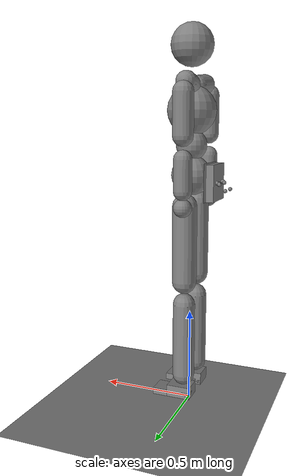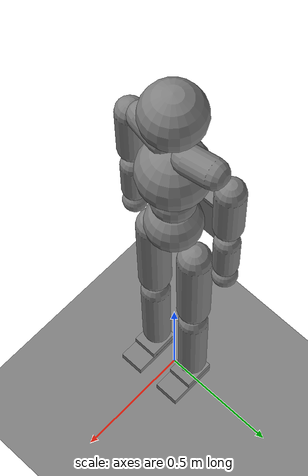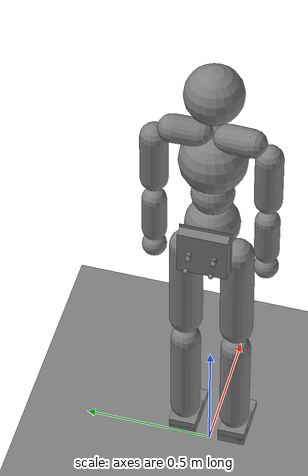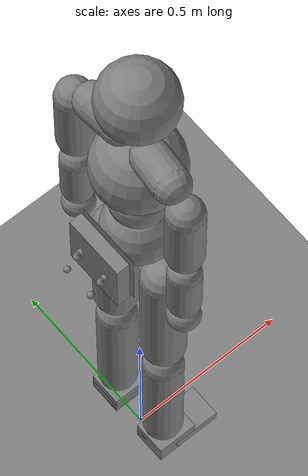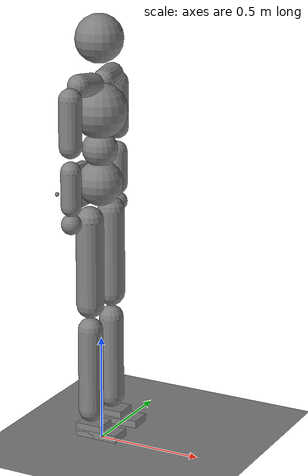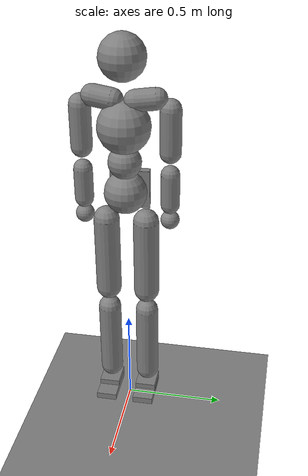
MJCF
<mujoco model="humanoid">

  <statistic extent="2" center="0.000000 0.000000 1.166667" />

  <option timestep="0.00555" />

  <default>
    <motor ctrlrange="-1 1" ctrllimited="true" />
    <default class="body">
      <geom type="capsule" condim="1" friction="1.0 0.05 0.05" solimp=".9 .99 .003" solref=".015 1" />
      <joint type="hinge" damping="0.1" stiffness="5" armature=".007" limited="true" solimplimit="0 .99 .01" />
      <site size="0.046667" group="3" />
      <default class="force-torque">
        <site type="box" size="0.011667 0.011667 0.023333" rgba="1 0 0 1" />
      </default>
      <default class="touch">
        <site type="capsule" rgba="0 0 1 .3" />
      </default>
    </default>
  </default>

  <worldbody>
    <geom name="floor" type="plane" conaffinity="1" size="116.666667 116.666667 0.233333" />
    <body name="pelvis" pos="0.000000 0.000000 1.166667" childclass="body">
      <freejoint name="root" />
      <site name="root" class="force-torque" />
      <geom name="pelvis" type="sphere" pos="0.000000 0.000000 0.081667" size="0.105000" density="2226" />
      <geom name="upper_waist" type="sphere" pos="0.000000 0.000000 0.239167" size="0.081667" density="2226" />
      <site name="pelvis" class="touch" type="sphere" pos="0.000000 0.000000 0.081667" size="0.106167" />
      <site name="upper_waist" class="touch" type="sphere" pos="0.000000 0.000000 0.239167" size="0.082833" />

      <body name="torso" pos="0.000000 0.000000 0.275510">
        <light name="top" pos="0.000000 0.000000 2.333333" mode="trackcom" />
        <camera name="back" pos="-3.500000 0.000000 1.166667" xyaxes="0 -1 0 1 0 2" mode="trackcom" />
        <camera name="side" pos="0.000000 -3.500000 1.166667" xyaxes="1 0 0 0 1 2" mode="trackcom" />
        <joint name="abdomen_x" pos="0.000000 0.000000 0.000000" axis="1 0 0" range="-60 60" stiffness="600" damping="60" armature=".025" />
        <joint name="abdomen_y" pos="0.000000 0.000000 0.000000" axis="0 1 0" range="-60 90" stiffness="600" damping="60" armature=".025" />
        <joint name="abdomen_z" pos="0.000000 0.000000 0.000000" axis="0 0 1" range="-50 50" stiffness="600" damping="60" armature=".025" />
        <geom name="torso" type="sphere" pos="0.000000 0.000000 0.140000" size="0.128333" density="1794" />
        <site name="torso" class="touch" type="sphere" pos="0.000000 0.000000 0.140000" size="0.129500" />

        <geom name="right_clavicle" fromto="-0.007015 -0.053407 0.266928 -0.019641 -0.149540 0.277221" size="0.052500" density="1100" />
        <geom name="left_clavicle" fromto="-0.007015 0.053407 0.266928 -0.019641 0.149540 0.277221" size="0.052500" density="1100" />

        <body name="head" pos="0.000000 0.000000 0.261210">
          <joint name="neck_x" axis="1 0 0" range="-50 50" stiffness="50" damping="5" armature=".017" />
          <joint name="neck_y" axis="0 1 0" range="-40 60" stiffness="50" damping="5" armature=".017" />
          <joint name="neck_z" axis="0 0 1" range="-45 45" stiffness="50" damping="5" armature=".017" />
          <geom name="head" type="sphere" pos="0.000000 0.000000 0.204167" size="0.110833" density="1081" />
          <site name="head" class="touch" pos="0.000000 0.000000 0.204167" type="sphere" size="0.120167" />
          <camera name="egocentric" pos="0.120167 0.000000 0.204167" xyaxes="0 -1 0 .1 0 1" fovy="80" />
        </body>

        <body name="right_upper_arm" pos="-0.028058 -0.213628 0.284083">
          <joint name="right_shoulder_x" axis="1 0 0" range="-180 45" stiffness="200" damping="20" armature=".02" />
          <joint name="right_shoulder_y" axis="0 1 0" range="-180 60" stiffness="200" damping="20" armature=".02" />
          <joint name="right_shoulder_z" axis="0 0 1" range="-90 90" stiffness="200" damping="20" armature=".02" />
          <geom name="right_upper_arm" fromto="0.000000 0.000000 -0.058333 0.000000 0.000000 -0.268333" size="0.052500" density="982" />
          <site name="right_upper_arm" class="touch" pos="0.000000 0.000000 -0.163333" size="0.053667 0.116667" zaxis="0 0 1" />

          <body name="right_lower_arm" pos="0.000000 0.000000 -0.320586">
            <joint name="right_elbow" axis="0 1 0" range="-160 0" stiffness="150" damping="15" armature=".015" />
            <geom name="right_lower_arm" fromto="0.000000 0.000000 -0.061250 0.000000 0.000000 -0.218750" size="0.046667" density="1056" />
            <site name="right_lower_arm" class="touch" pos="0.000000 0.000000 -0.140000" size="0.047833 0.079917" zaxis="0 1 0" />

            <body name="right_hand" pos="0.000000 0.000000 -0.302105">
              <geom name="right_hand" type="sphere" size="0.046667" density="1865" />
              <site name="right_hand" class="touch" type="sphere" size="0.047833" />
            </body>
          </body>
        </body>

        <body name="left_upper_arm" pos="-0.028058 0.213628 0.284083">
          <joint name="left_shoulder_x" axis="1 0 0" range="-45 180" stiffness="200" damping="20" armature=".02" />
          <joint name="left_shoulder_y" axis="0 1 0" range="-180 60" stiffness="200" damping="20" armature=".02" />
          <joint name="left_shoulder_z" axis="0 0 1" range="-90 90" stiffness="200" damping="20" armature=".02" />
          <geom name="left_upper_arm" fromto="0.000000 0.000000 -0.058333 0.000000 0.000000 -0.268333" size="0.052500" density="982" />
          <site name="left_upper_arm" class="touch" pos="0.000000 0.000000 -0.163333" size="0.053667 0.116667" zaxis="0 0 1" />

          <body name="left_lower_arm" pos="0.000000 0.000000 -0.320586">
            <joint name="left_elbow" axis="0 1 0" range="-160 0" stiffness="150" damping="15" armature=".015" />
            <geom name="left_lower_arm" fromto="0.000000 0.000000 -0.061250 0.000000 0.000000 -0.218750" size="0.046667" density="1056" />
            <site name="left_lower_arm" class="touch" pos="0.000000 0.000000 -0.116667" size="0.047833 0.079917" zaxis="0 0 1" />

            <body name="left_hand" pos="0.000000 0.000000 -0.302105">
              <geom name="left_hand" type="sphere" size="0.046667" density="1865" />
              <site name="left_hand" class="touch" type="sphere" size="0.047833" />
            </body>
          </body>
        </body>
      </body>

      <body name="right_thigh" pos="0.000000 -0.099035 0.000000">
        <site name="right_hip" class="force-torque" />
        <joint name="right_hip_x" axis="1 0 0" range="-60 15" stiffness="300" damping="30" armature=".02" />
        <joint name="right_hip_y" axis="0 1 0" range="-140 60" stiffness="300" damping="30" armature=".02" />
        <joint name="right_hip_z" axis="0 0 1" range="-60 35" stiffness="300" damping="30" armature=".02" />
        <geom name="right_thigh" fromto="0.000000 0.000000 -0.070000 0.000000 0.000000 -0.470000" size="0.064167" density="1269" />
        <site name="right_thigh" class="touch" pos="0.000000 0.000000 -0.245000" size="0.065333 0.351167" zaxis="0 0 -1" />

        <body name="right_shin" pos="0.000000 0.000000 -0.541804">
          <site name="right_knee" class="force-torque" pos="0.000000 0.000000 0.000000" />
          <joint name="right_knee" pos="0.000000 0.000000 0.000000" axis="0 1 0" range="0 160" stiffness="300" damping="30" armature=".02" />
          <geom name="right_shin" fromto="0.000000 0.000000 -0.052500 0.000000 0.000000 -0.444167" size="0.058333" density="1014" />
          <site name="right_shin" class="touch" pos="0.000000 0.000000 -0.233333" size="0.059500 0.182000" zaxis="0 0 -1" />

          <body name="right_foot" pos="0.000000 0.000000 -0.508182">
            <site name="right_ankle" class="force-torque" />
            <joint name="right_ankle_x" pos="0.000000 0.000000 0.000000" axis="1 0 0" range="-30 30" stiffness="200" damping="20" armature=".01" />
            <joint name="right_ankle_y" pos="0.000000 0.000000 0.000000" axis="0 1 0" range="-55 55" stiffness="200" damping="20" armature=".01" />
            <joint name="right_ankle_z" pos="0.000000 0.000000 0.000000" axis="0 0 1" range="-40 40" stiffness="200" damping="20" armature=".01" />
            <geom name="right_foot" type="box" pos="0.012500 0.000000 -0.026250" size="0.063250 0.052500 0.032083" density="1141" />
            <geom name="right_toe" type="box" pos="0.052500 0.000000 -0.041250" size="0.103250 0.052500 0.0171" density="1141" />
            <site name="right_foot" class="touch" type="box" pos="0.052500 0.000000 -0.026250" size="0.104417 0.064167 0.033250" />
          </body>
        </body>
      </body>

      <body name="left_thigh" pos="0.000000 0.099035 0.000000">
        <site name="left_hip" class="force-torque" />
        <joint name="left_hip_x" axis="1 0 0" range="-15 60" stiffness="300" damping="30" armature=".02" />
        <joint name="left_hip_y" axis="0 1 0" range="-140 60" stiffness="300" damping="30" armature=".02" />
        <joint name="left_hip_z" axis="0 0 1" range="-35 60" stiffness="300" damping="30" armature=".02" />
        <geom name="left_thigh" fromto="0.000000 0.000000 -0.070000 0.000000 0.000000 -0.470000" size="0.064167" density="1269" />
        <site name="left_thigh" class="touch" pos="0.000000 0.000000 -0.245000" size="0.065333 0.351167" zaxis="0 0 -1" />

        <body name="left_shin" pos="0.000000 0.000000 -0.541804">
          <site name="left_knee" class="force-torque" pos="0.000000 0.000000 0.023333" />
          <joint name="left_knee" pos="0.000000 0.000000 0.000000" axis="0 1 0" range="0 160" stiffness="300" damping="30" armature=".02" />
          <geom name="left_shin" fromto="0.000000 0.000000 -0.052500 0.000000 0.000000 -0.444167" size="0.058333" density="1014" />
          <site name="left_shin" class="touch" pos="0.000000 0.000000 -0.233333" size="0.059500 0.182000" zaxis="0 0 -1" />

          <body name="left_foot" pos="0.000000 0.000000 -0.508182">
            <site name="left_ankle" class="force-torque" />
            <joint name="left_ankle_x" pos="0.000000 0.000000 0.000000" axis="1 0 0" range="-30 30" stiffness="200" damping="20" armature=".01" />
            <joint name="left_ankle_y" pos="0.000000 0.000000 0.000000" axis="0 1 0" range="-55 55" stiffness="200" damping="20" armature=".01" />
            <joint name="left_ankle_z" pos="0.000000 0.000000 0.000000" axis="0 0 1" range="-40 40" stiffness="200" damping="20" armature=".01" />
            <geom name="left_foot" type="box" pos="0.012500 0.000000 -0.026250" size="0.063250 0.052500 0.032083" density="1141" />
            <geom name="left_toe" type="box" pos="0.052500 0.000000 -0.041250" size="0.103250 0.052500 0.0171" density="1141" />
            <site name="left_foot" class="touch" type="box" pos="0.052500 0.000000 -0.026250" size="0.104417 0.064167 0.033250" />
          </body>
        </body>
      </body>
      <body name="SRL" pos="-0.10 0 0.05" quat="0.0 0.0 0.0 1.0">
				<geom name="board" pos="0 0 0" size="0.0005 0.1 0.1 " type="box" density='10'/>
				<body name="SRL_root" pos="0.03 0 0.00"  >
					<geom density="10" name="SRL_geom_root" pos="0 0 0" size="0.02 0.095 0.095" type="box"/>
					<body name="SRL_right_leg1" pos="0.02 0.0475 0" quat="1.0 0.0 0.0 0.0">
						<geom density="10" fromto="0 0 0 0.01 0 0" name="SRL_geom_right_leg1" size="0.01" type="capsule"/>
						<body name="SRL_right_leg2" pos="0.01 0 0" quat="0.92388 0.0 0.38268 0.0">
							<geom density="10" fromto="0 0 0 0.01 0 0" name="SRL_geom_right_leg2" size="0.01" type="capsule"/>
							<body name="SRL_right_end" pos="0.01 0 0" quat="0.70711 0.0 -0.70711 0.0">
								<geom density="10" friction="5.0 0.05 0.05" name="SRL_geom_right_end" pos="0 0 -0.045" size="0.01" type="sphere"/>
							</body>
						</body>
					</body>
					<body name="SRL_left_leg1" pos="0.02 -0.0475 0" quat="1.0 0.0 0.0 0.0">
						<geom density="10" fromto="0 0 0 0.01 0 0" name="SRL_geom_left_leg1" size="0.01" type="capsule"/>
						<body name="SRL_left_leg2" pos="0.01 0 0" quat="0.92388 0.0 0.38268 0.0">
							<geom density="10" fromto="0 0 0 0.01 0 0" name="SRL_geom_left_leg2" size="0.01" type="capsule"/>
							<body name="SRL_left_end" pos="0.01 0 0" quat="0.70711 0.0 -0.70711 0.0">
								<geom density="10" friction="5.0 0.05 0.05" name="SRL_geom_left_end" pos="0 0 -0.045" size="0.01" type="sphere"/>
							</body>
						</body>
					</body>
				</body>
			</body>
    </body>
  </worldbody>

  <actuator>
    <motor name="abdomen_x" gear="231.5779" joint="abdomen_x" />
    <motor name="abdomen_y" gear="231.5779" joint="abdomen_y" />
    <motor name="abdomen_z" gear="231.5779" joint="abdomen_z" />
    <motor name="neck_x" gear="37.0525" joint="neck_x" />
    <motor name="neck_y" gear="37.0525" joint="neck_y" />
    <motor name="neck_z" gear="37.0525" joint="neck_z" />
    <motor name="right_shoulder_x" gear="129.6836" joint="right_shoulder_x" />
    <motor name="right_shoulder_y" gear="129.6836" joint="right_shoulder_y" />
    <motor name="right_shoulder_z" gear="129.6836" joint="right_shoulder_z" />
    <motor name="right_elbow" gear="111.1574" joint="right_elbow" />
    <motor name="left_shoulder_x" gear="129.6836" joint="left_shoulder_x" />
    <motor name="left_shoulder_y" gear="129.6836" joint="left_shoulder_y" />
    <motor name="left_shoulder_z" gear="129.6836" joint="left_shoulder_z" />
    <motor name="left_elbow" gear="111.1574" joint="left_elbow" />
    <motor name="right_hip_x" gear="231.5779" joint="right_hip_x" />
    <motor name="right_hip_z" gear="231.5779" joint="right_hip_z" />
    <motor name="right_hip_y" gear="231.5779" joint="right_hip_y" />
    <motor name="right_knee" gear="185.2623" joint="right_knee" />
    <motor name="right_ankle_x" gear="92.6312" joint="right_ankle_x" />
    <motor name="right_ankle_y" gear="92.6312" joint="right_ankle_y" />
    <motor name="right_ankle_z" gear="92.6312" joint="right_ankle_z" />
    <motor name="left_hip_x" gear="231.5779" joint="left_hip_x" />
    <motor name="left_hip_z" gear="231.5779" joint="left_hip_z" />
    <motor name="left_hip_y" gear="231.5779" joint="left_hip_y" />
    <motor name="left_knee" gear="185.2623" joint="left_knee" />
    <motor name="left_ankle_x" gear="92.6312" joint="left_ankle_x" />
    <motor name="left_ankle_y" gear="92.6312" joint="left_ankle_y" />
    <motor name="left_ankle_z" gear="92.6312" joint="left_ankle_z" />
  </actuator>

  <sensor>
    <subtreelinvel name="pelvis_subtreelinvel" body="pelvis" />
    <accelerometer name="root_accel" site="root" />
    <velocimeter name="root_vel" site="root" />
    <gyro name="root_gyro" site="root" />

    <force name="left_ankle_force" site="left_ankle" />
    <force name="right_ankle_force" site="right_ankle" />
    <force name="left_knee_force" site="left_knee" />
    <force name="right_knee_force" site="right_knee" />
    <force name="left_hip_force" site="left_hip" />
    <force name="right_hip_force" site="right_hip" />

    <torque name="left_ankle_torque" site="left_ankle" />
    <torque name="right_ankle_torque" site="right_ankle" />
    <torque name="left_knee_torque" site="left_knee" />
    <torque name="right_knee_torque" site="right_knee" />
    <torque name="left_hip_torque" site="left_hip" />
    <torque name="right_hip_torque" site="right_hip" />

    <touch name="pelvis_touch" site="pelvis" />
    <touch name="upper_waist_touch" site="upper_waist" />
    <touch name="torso_touch" site="torso" />
    <touch name="head_touch" site="head" />
    <touch name="right_upper_arm_touch" site="right_upper_arm" />
    <touch name="right_lower_arm_touch" site="right_lower_arm" />
    <touch name="right_hand_touch" site="right_hand" />
    <touch name="left_upper_arm_touch" site="left_upper_arm" />
    <touch name="left_lower_arm_touch" site="left_lower_arm" />
    <touch name="left_hand_touch" site="left_hand" />
    <touch name="right_thigh_touch" site="right_thigh" />
    <touch name="right_shin_touch" site="right_shin" />
    <touch name="right_foot_touch" site="right_foot" />
    <touch name="left_thigh_touch" site="left_thigh" />
    <touch name="left_shin_touch" site="left_shin" />
    <touch name="left_foot_touch" site="left_foot" />
  </sensor>

</mujoco>
